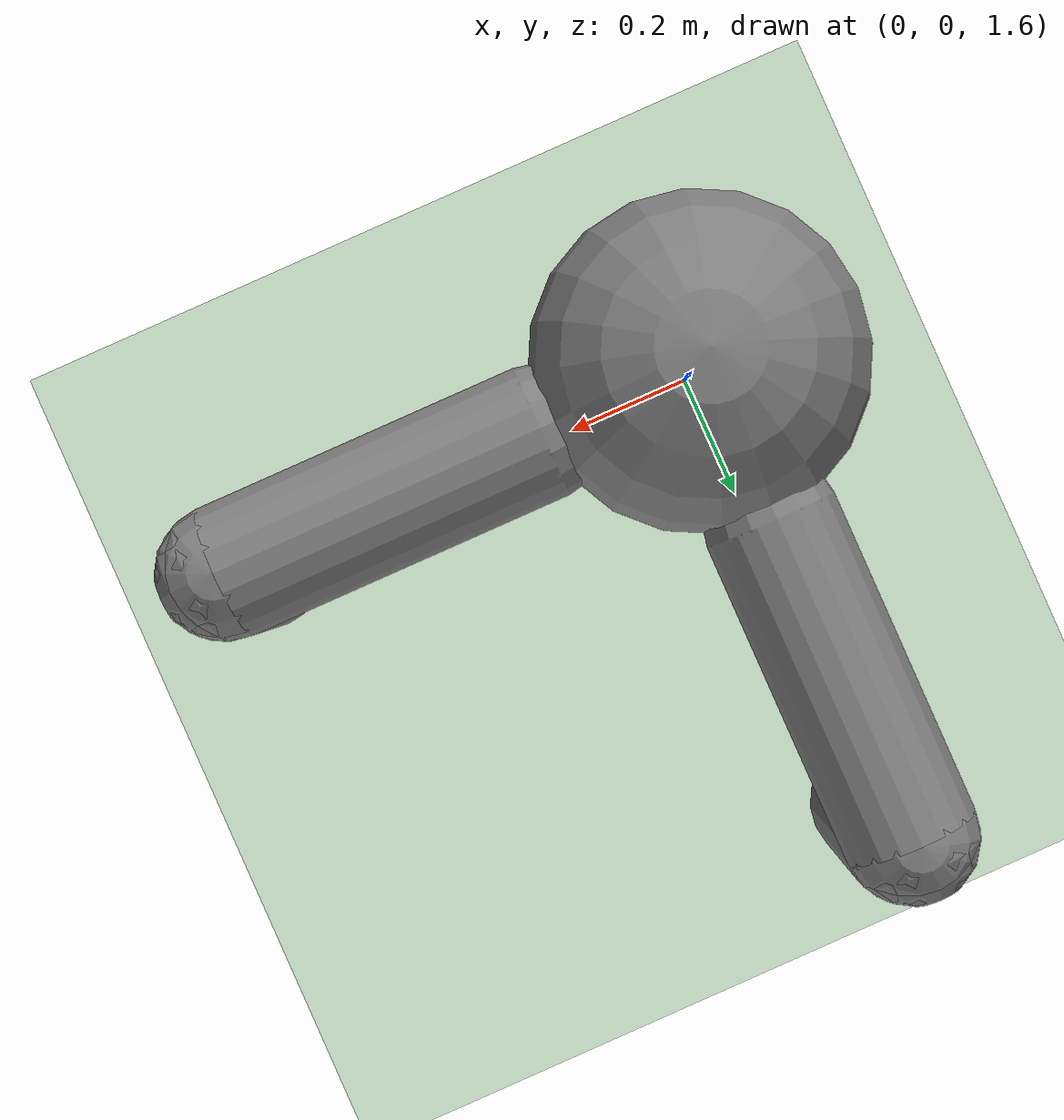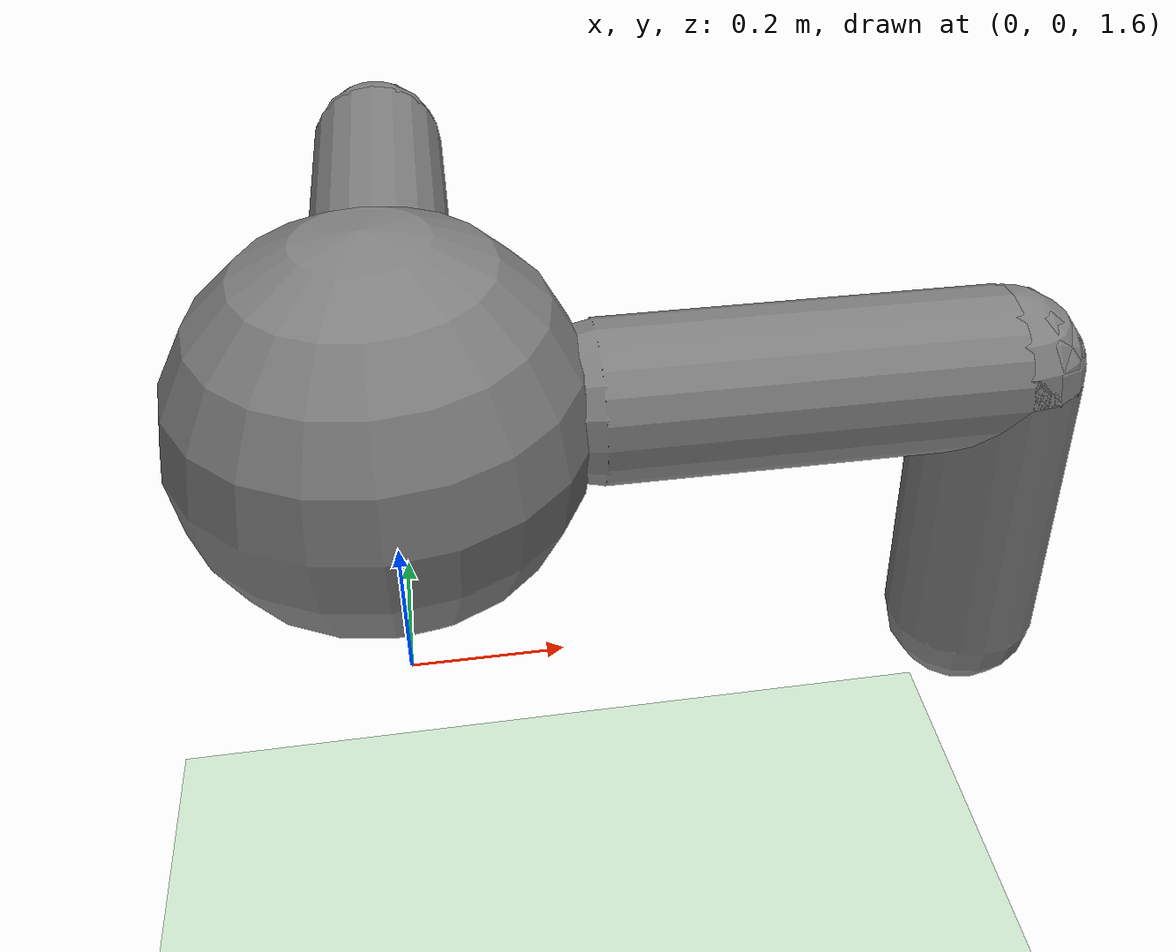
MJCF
<?xml version="1.0" encoding="utf-8"?>
<mujoco model="antrobot">
	<compiler/>
	<option gravity="0 0 0"/>
	<size nconmax="500" njmax="1000"/>
	<custom/>
	<default/>
	<asset>
		<texture builtin="gradient" height="100" rgb1="1 1 1" rgb2="0 0 0" type="skybox" width="100"/>
		<texture builtin="flat" height="1278" mark="cross" markrgb="1 1 1" name="texgeom" random="0.01" rgb1="0.8 0.6 0.4" rgb2="0.8 0.6 0.4" type="cube" width="127"/>
		<texture builtin="checker" height="100" name="texplane" rgb1="0 0 0" rgb2="0.8 0.8 0.8" type="2d" width="100"/>
		<material name="MatPlane" reflectance="0.5" shininess="1" specular="1" texrepeat="60 60" texture="texplane"/>
		<material name="geom" texture="texgeom" texuniform="true"/>
	</asset>
	<worldbody>
		<light cutoff="100" diffuse="1 1 1" dir="0 0 -1.3" directional="true" exponent="1" pos="0 0 1.3" specular="0.1 0.1 0.1"/>
		<geom conaffinity="1" condim="3" material="MatPlane" name="floor" pos="0 0 0" rgba="0.8 0.9 0.8 1" size="40 40 40" type="plane"/>
		<body name="root" pos="0 0 2" euler="0 0 0">
			<geom name="geomroot" pos="0 0 0" size="0.25" type="sphere"/>
			<body name="part1" pos="0.25 0 0" euler="0 0 0">
				<geom fromto="0 0 0 0.5 0 0" name="geompart1" size="0.1" type="capsule"/>
				<body name="part2" pos="0.5 0 0" euler="0 90 0">
					<geom fromto="0 0 0 0.4 0 0" name="geompart2" size="0.1" type="capsule"/>
					<joint axis="0 1 0" name="joint_joint11" pos="0 0 0" range="-45 45" type="hinge"/>
				</body>
			</body>
			<body name="part3" pos="0 0.25 0" euler="0 0 90">
				<geom fromto="0 0 0 0.5 0 0" name="geompart3" size="0.1" type="capsule"/>
				<body name="part4" pos="0.5 0 0" euler="0 90 0">
					<geom fromto="0 0 0 0.4 0 0" name="geompart4" size="0.1" type="capsule"/>
					<joint axis="0 1 0" name="joint_joint31" pos="0 0 0" range="-45 45" type="hinge"/>
				</body>
			</body>
		</body>
	</worldbody>
	<actuator>
		<motor ctrllimited="true" ctrlrange="-1 1" joint="joint_joint11"/>
		<motor ctrllimited="true" ctrlrange="-1 1" joint="joint_joint31"/>
	</actuator>
</mujoco>
